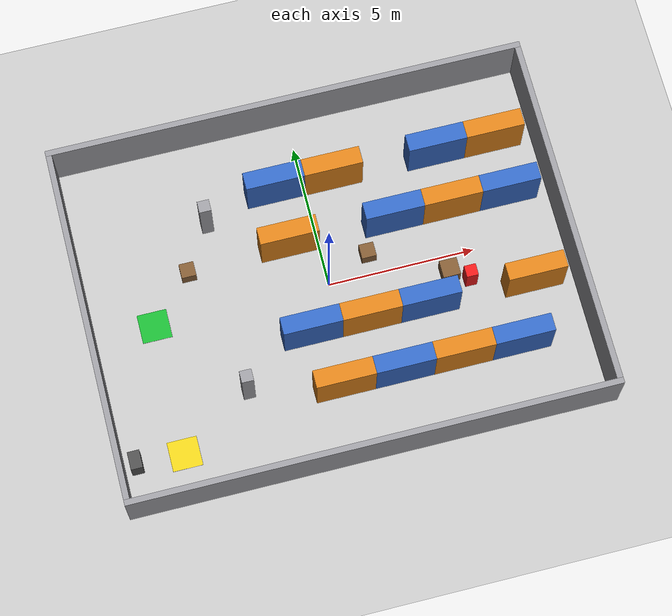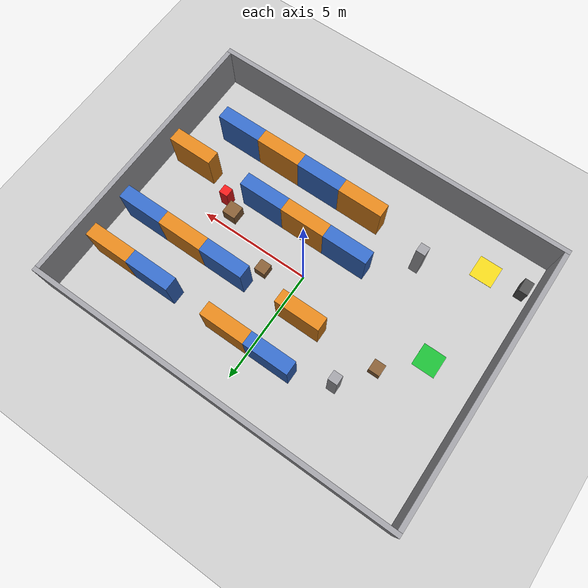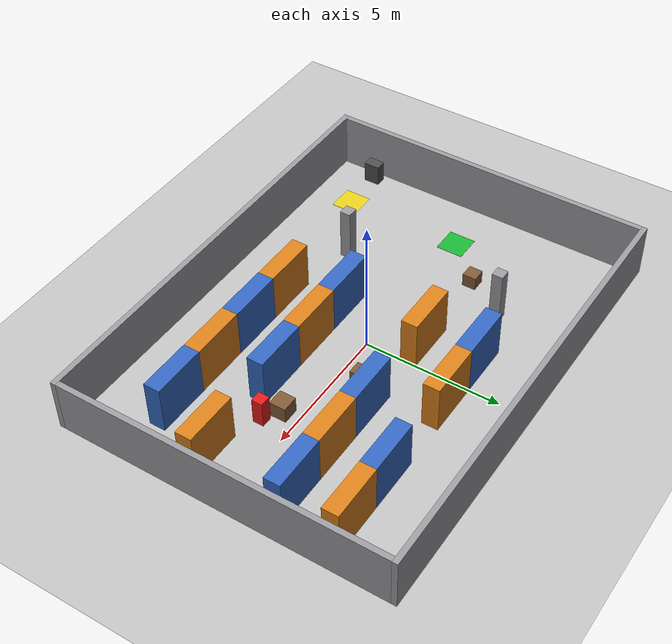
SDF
<?xml version="1.0"?>
<sdf version="1.9">
  <world name="warehouse">
    <physics name="1ms" type="ode"><max_step_size>0.001</max_step_size><real_time_factor>1.0</real_time_factor></physics>
    <plugin filename="gz-sim-physics-system" name="gz::sim::systems::Physics"/>
    <plugin filename="gz-sim-user-commands-system" name="gz::sim::systems::UserCommands"/>
    <plugin filename="gz-sim-scene-broadcaster-system" name="gz::sim::systems::SceneBroadcaster"/>
    <plugin filename="gz-sim-sensors-system" name="gz::sim::systems::Sensors">
      <render_engine>ogre2</render_engine>
    </plugin>
    <plugin filename="gz-sim-imu-system" name="gz::sim::systems::Imu"/>

    <scene><ambient>0.5 0.5 0.5 1</ambient><background>0.7 0.8 0.9 1</background></scene>
    <light type="directional" name="sun">
      <cast_shadows>true</cast_shadows><pose>0 0 10 0 0 0</pose>
      <diffuse>0.9 0.9 0.9 1</diffuse><direction>-0.5 0.1 -0.9</direction>
    </light>

    <model name="ground"><static>true</static><link name="l">
      <collision name="c"><geometry><plane><normal>0 0 1</normal><size>40 40</size></plane></geometry></collision>
      <visual name="v"><geometry><plane><normal>0 0 1</normal><size>40 40</size></plane></geometry>
        <material><ambient>0.75 0.75 0.75 1</ambient><diffuse>0.75 0.75 0.75 1</diffuse></material></visual>
    </link></model>

    <model name="wall_n"><static>true</static><pose>0 6.1 1.0 0 0 0</pose>
      <link name="l"><collision name="c"><geometry><box><size>16.4 0.2 2.0</size></box></geometry></collision>
        <visual name="v"><geometry><box><size>16.4 0.2 2.0</size></box></geometry>
          <material><ambient>0.6 0.6 0.62 1</ambient><diffuse>0.6 0.6 0.62 1</diffuse></material></visual>
      </link></model>
    <model name="wall_s"><static>true</static><pose>0 -6.1 1.0 0 0 0</pose>
      <link name="l"><collision name="c"><geometry><box><size>16.4 0.2 2.0</size></box></geometry></collision>
        <visual name="v"><geometry><box><size>16.4 0.2 2.0</size></box></geometry>
          <material><ambient>0.6 0.6 0.62 1</ambient><diffuse>0.6 0.6 0.62 1</diffuse></material></visual>
      </link></model>
    <model name="wall_e"><static>true</static><pose>8.1 0 1.0 0 0 0</pose>
      <link name="l"><collision name="c"><geometry><box><size>0.2 12.0 2.0</size></box></geometry></collision>
        <visual name="v"><geometry><box><size>0.2 12.0 2.0</size></box></geometry>
          <material><ambient>0.6 0.6 0.62 1</ambient><diffuse>0.6 0.6 0.62 1</diffuse></material></visual>
      </link></model>
    <model name="wall_w"><static>true</static><pose>-8.1 0 1.0 0 0 0</pose>
      <link name="l"><collision name="c"><geometry><box><size>0.2 12.0 2.0</size></box></geometry></collision>
        <visual name="v"><geometry><box><size>0.2 12.0 2.0</size></box></geometry>
          <material><ambient>0.6 0.6 0.62 1</ambient><diffuse>0.6 0.6 0.62 1</diffuse></material></visual>
      </link></model>
    <model name="shelf_0_0"><static>true</static><pose>-1.0 3.6 0.9 0 0 0</pose>
      <link name="l"><collision name="c"><geometry><box><size>2.0 0.6 1.8</size></box></geometry></collision>
        <visual name="v"><geometry><box><size>2.0 0.6 1.8</size></box></geometry>
          <material><ambient>0.2 0.4 0.75 1</ambient><diffuse>0.2 0.4 0.75 1</diffuse></material></visual>
      </link></model>
    <model name="shelf_0_1"><static>true</static><pose>1.0 3.6 0.9 0 0 0</pose>
      <link name="l"><collision name="c"><geometry><box><size>2.0 0.6 1.8</size></box></geometry></collision>
        <visual name="v"><geometry><box><size>2.0 0.6 1.8</size></box></geometry>
          <material><ambient>0.85 0.5 0.1 1</ambient><diffuse>0.85 0.5 0.1 1</diffuse></material></visual>
      </link></model>
    <model name="shelf_0_2"><static>true</static><pose>4.6 3.6 0.9 0 0 0</pose>
      <link name="l"><collision name="c"><geometry><box><size>2.0 0.6 1.8</size></box></geometry></collision>
        <visual name="v"><geometry><box><size>2.0 0.6 1.8</size></box></geometry>
          <material><ambient>0.2 0.4 0.75 1</ambient><diffuse>0.2 0.4 0.75 1</diffuse></material></visual>
      </link></model>
    <model name="shelf_0_3"><static>true</static><pose>6.6 3.6 0.9 0 0 0</pose>
      <link name="l"><collision name="c"><geometry><box><size>2.0 0.6 1.8</size></box></geometry></collision>
        <visual name="v"><geometry><box><size>2.0 0.6 1.8</size></box></geometry>
          <material><ambient>0.85 0.5 0.1 1</ambient><diffuse>0.85 0.5 0.1 1</diffuse></material></visual>
      </link></model>
    <model name="shelf_1_0"><static>true</static><pose>-1.0 1.6 0.9 0 0 0</pose>
      <link name="l"><collision name="c"><geometry><box><size>2.0 0.6 1.8</size></box></geometry></collision>
        <visual name="v"><geometry><box><size>2.0 0.6 1.8</size></box></geometry>
          <material><ambient>0.85 0.5 0.1 1</ambient><diffuse>0.85 0.5 0.1 1</diffuse></material></visual>
      </link></model>
    <model name="shelf_1_1"><static>true</static><pose>2.6 1.6 0.9 0 0 0</pose>
      <link name="l"><collision name="c"><geometry><box><size>2.0 0.6 1.8</size></box></geometry></collision>
        <visual name="v"><geometry><box><size>2.0 0.6 1.8</size></box></geometry>
          <material><ambient>0.2 0.4 0.75 1</ambient><diffuse>0.2 0.4 0.75 1</diffuse></material></visual>
      </link></model>
    <model name="shelf_1_2"><static>true</static><pose>4.6 1.6 0.9 0 0 0</pose>
      <link name="l"><collision name="c"><geometry><box><size>2.0 0.6 1.8</size></box></geometry></collision>
        <visual name="v"><geometry><box><size>2.0 0.6 1.8</size></box></geometry>
          <material><ambient>0.85 0.5 0.1 1</ambient><diffuse>0.85 0.5 0.1 1</diffuse></material></visual>
      </link></model>
    <model name="shelf_1_3"><static>true</static><pose>6.6 1.6 0.9 0 0 0</pose>
      <link name="l"><collision name="c"><geometry><box><size>2.0 0.6 1.8</size></box></geometry></collision>
        <visual name="v"><geometry><box><size>2.0 0.6 1.8</size></box></geometry>
          <material><ambient>0.2 0.4 0.75 1</ambient><diffuse>0.2 0.4 0.75 1</diffuse></material></visual>
      </link></model>
    <model name="shelf_2_0"><static>true</static><pose>-1.0 -1.6 0.9 0 0 0</pose>
      <link name="l"><collision name="c"><geometry><box><size>2.0 0.6 1.8</size></box></geometry></collision>
        <visual name="v"><geometry><box><size>2.0 0.6 1.8</size></box></geometry>
          <material><ambient>0.2 0.4 0.75 1</ambient><diffuse>0.2 0.4 0.75 1</diffuse></material></visual>
      </link></model>
    <model name="shelf_2_1"><static>true</static><pose>1.0 -1.6 0.9 0 0 0</pose>
      <link name="l"><collision name="c"><geometry><box><size>2.0 0.6 1.8</size></box></geometry></collision>
        <visual name="v"><geometry><box><size>2.0 0.6 1.8</size></box></geometry>
          <material><ambient>0.85 0.5 0.1 1</ambient><diffuse>0.85 0.5 0.1 1</diffuse></material></visual>
      </link></model>
    <model name="shelf_2_2"><static>true</static><pose>3.0 -1.6 0.9 0 0 0</pose>
      <link name="l"><collision name="c"><geometry><box><size>2.0 0.6 1.8</size></box></geometry></collision>
        <visual name="v"><geometry><box><size>2.0 0.6 1.8</size></box></geometry>
          <material><ambient>0.2 0.4 0.75 1</ambient><diffuse>0.2 0.4 0.75 1</diffuse></material></visual>
      </link></model>
    <model name="shelf_2_3"><static>true</static><pose>6.6 -1.6 0.9 0 0 0</pose>
      <link name="l"><collision name="c"><geometry><box><size>2.0 0.6 1.8</size></box></geometry></collision>
        <visual name="v"><geometry><box><size>2.0 0.6 1.8</size></box></geometry>
          <material><ambient>0.85 0.5 0.1 1</ambient><diffuse>0.85 0.5 0.1 1</diffuse></material></visual>
      </link></model>
    <model name="shelf_3_0"><static>true</static><pose>-0.4 -3.6 0.9 0 0 0</pose>
      <link name="l"><collision name="c"><geometry><box><size>2.0 0.6 1.8</size></box></geometry></collision>
        <visual name="v"><geometry><box><size>2.0 0.6 1.8</size></box></geometry>
          <material><ambient>0.85 0.5 0.1 1</ambient><diffuse>0.85 0.5 0.1 1</diffuse></material></visual>
      </link></model>
    <model name="shelf_3_1"><static>true</static><pose>1.6 -3.6 0.9 0 0 0</pose>
      <link name="l"><collision name="c"><geometry><box><size>2.0 0.6 1.8</size></box></geometry></collision>
        <visual name="v"><geometry><box><size>2.0 0.6 1.8</size></box></geometry>
          <material><ambient>0.2 0.4 0.75 1</ambient><diffuse>0.2 0.4 0.75 1</diffuse></material></visual>
      </link></model>
    <model name="shelf_3_2"><static>true</static><pose>3.6 -3.6 0.9 0 0 0</pose>
      <link name="l"><collision name="c"><geometry><box><size>2.0 0.6 1.8</size></box></geometry></collision>
        <visual name="v"><geometry><box><size>2.0 0.6 1.8</size></box></geometry>
          <material><ambient>0.85 0.5 0.1 1</ambient><diffuse>0.85 0.5 0.1 1</diffuse></material></visual>
      </link></model>
    <model name="shelf_3_3"><static>true</static><pose>5.6 -3.6 0.9 0 0 0</pose>
      <link name="l"><collision name="c"><geometry><box><size>2.0 0.6 1.8</size></box></geometry></collision>
        <visual name="v"><geometry><box><size>2.0 0.6 1.8</size></box></geometry>
          <material><ambient>0.2 0.4 0.75 1</ambient><diffuse>0.2 0.4 0.75 1</diffuse></material></visual>
      </link></model>
    <model name="crate_1"><static>true</static><pose>1.5 0.7 0.25 0 0 0</pose>
      <link name="l"><collision name="c"><geometry><box><size>0.5 0.5 0.5</size></box></geometry></collision>
        <visual name="v"><geometry><box><size>0.5 0.5 0.5</size></box></geometry>
          <material><ambient>0.5 0.35 0.2 1</ambient><diffuse>0.5 0.35 0.2 1</diffuse></material></visual>
      </link></model>
    <model name="crate_2"><static>true</static><pose>4.0 -0.6 0.3 0 0 0</pose>
      <link name="l"><collision name="c"><geometry><box><size>0.6 0.6 0.6</size></box></geometry></collision>
        <visual name="v"><geometry><box><size>0.6 0.6 0.6</size></box></geometry>
          <material><ambient>0.5 0.35 0.2 1</ambient><diffuse>0.5 0.35 0.2 1</diffuse></material></visual>
      </link></model>
    <model name="crate_3"><static>true</static><pose>-4.5 1.5 0.25 0 0 0</pose>
      <link name="l"><collision name="c"><geometry><box><size>0.5 0.5 0.5</size></box></geometry></collision>
        <visual name="v"><geometry><box><size>0.5 0.5 0.5</size></box></geometry>
          <material><ambient>0.5 0.35 0.2 1</ambient><diffuse>0.5 0.35 0.2 1</diffuse></material></visual>
      </link></model>
    <model name="pillar_n"><static>true</static><pose>-3.5 3.0 1.0 0 0 0</pose>
      <link name="l"><collision name="c"><geometry><box><size>0.4 0.4 2.0</size></box></geometry></collision>
        <visual name="v"><geometry><box><size>0.4 0.4 2.0</size></box></geometry>
          <material><ambient>0.6 0.6 0.62 1</ambient><diffuse>0.6 0.6 0.62 1</diffuse></material></visual>
      </link></model>
    <model name="pillar_s"><static>true</static><pose>-3.5 -3.0 1.0 0 0 0</pose>
      <link name="l"><collision name="c"><geometry><box><size>0.4 0.4 2.0</size></box></geometry></collision>
        <visual name="v"><geometry><box><size>0.4 0.4 2.0</size></box></geometry>
          <material><ambient>0.6 0.6 0.62 1</ambient><diffuse>0.6 0.6 0.62 1</diffuse></material></visual>
      </link></model>
    <model name="home_pad"><static>true</static><pose>-6.0 0.0 0.005 0 0 0</pose>
      <link name="l">
        <visual name="v"><geometry><box><size>1.0 1.0 0.01</size></box></geometry>
          <material><ambient>0.1 0.7 0.2 1</ambient><diffuse>0.1 0.7 0.2 1</diffuse></material></visual>
      </link></model>
    <model name="charge_pad"><static>true</static><pose>-6.0 -4.5 0.005 0 0 0</pose>
      <link name="l">
        <visual name="v"><geometry><box><size>1.0 1.0 0.01</size></box></geometry>
          <material><ambient>0.9 0.8 0.1 1</ambient><diffuse>0.9 0.8 0.1 1</diffuse></material></visual>
      </link></model>
    <model name="charger"><static>true</static><pose>-7.6 -4.5 0.4 0 0 0</pose>
      <link name="l"><collision name="c"><geometry><box><size>0.4 0.6 0.8</size></box></geometry></collision>
        <visual name="v"><geometry><box><size>0.4 0.6 0.8</size></box></geometry>
          <material><ambient>0.3 0.3 0.3 1</ambient><diffuse>0.3 0.3 0.3 1</diffuse></material></visual>
      </link></model>

    <model name="walker"><pose>4.6 -1.0 0.5 0 0 0</pose>
      <link name="l"><gravity>false</gravity>
        <inertial><mass>20</mass><inertia><ixx>100</ixx><iyy>100</iyy><izz>100</izz></inertia></inertial>
        <collision name="c"><geometry><box><size>0.4 0.4 1.0</size></box></geometry></collision>
        <visual name="v"><geometry><box><size>0.4 0.4 1.0</size></box></geometry>
          <material><ambient>0.9 0.1 0.1 1</ambient><diffuse>0.9 0.1 0.1 1</diffuse></material></visual>
      </link>
      <plugin filename="gz-sim-velocity-control-system" name="gz::sim::systems::VelocityControl"/>
    </model>
  </world>
</sdf>
